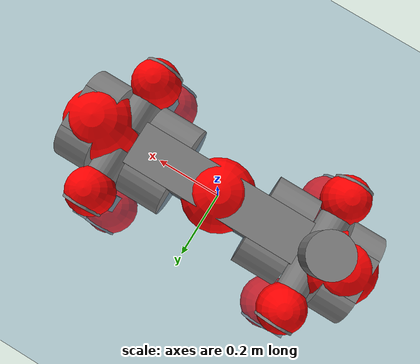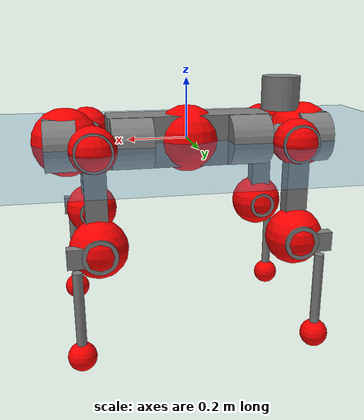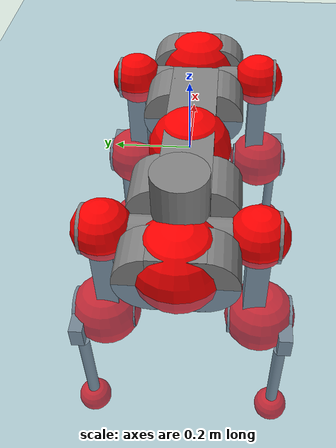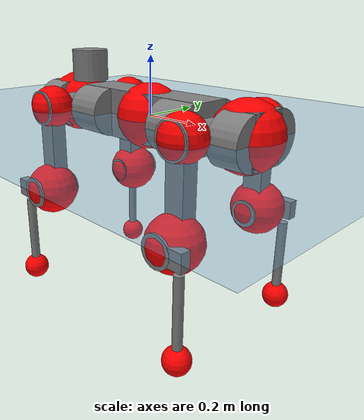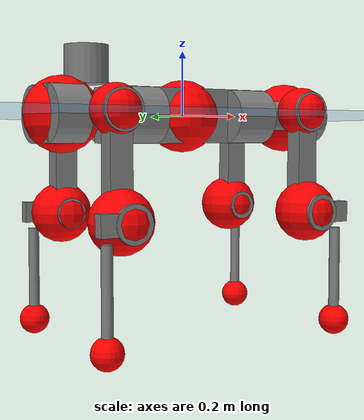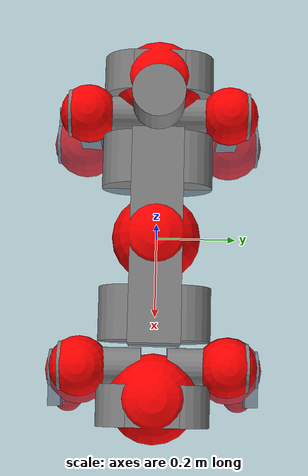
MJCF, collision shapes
<mujoco model="anymal_c">
  <compiler angle="radian" assetdir="assets" balanceinertia="true" inertiafromgeom="false"/>

  <option timestep="0.005" density="1.2" viscosity="2e-05"/>

  <size nkey="1"/>

  <visual>
    <quality shadowsize="8192"/>
    <map shadowclip="0.5"/>
  </visual>

  <default>
    <default class="/">
      <material specular="0" shininess="0.25"/>
      <geom contype="0" conaffinity="0" group="1" solref="-1000 -80"/>
      <site size="0.01 0.005 0.005" group="5"/>
      <general forcelimited="true" forcerange="-80 80" biastype="affine" gainprm="80" biasprm="0 -80 -2"/>
      <default class="anymal_c">
        <joint armature="0.01" damping="0.01" frictionloss="0.1"/>
        <default class="visual">
          <geom type="mesh" group="2"/>
          <default class="visual_zflip"/>
        </default>
        <default class="collision">
          <geom type="cylinder" group="3"/>
          <default class="foot">
            <geom size="0.03 0 0" type="sphere" condim="6" priority="1" friction="0.8 0.02 0.01" solimp="0.015 1 0.03"/>
          </default>
        </default>
      </default>
      <default class="reward_collision_sphere">
        <geom group="5" rgba="1 0 0 1"/>
      </default>
    </default>
  </default>

  <asset>
    <texture type="skybox" colorspace="auto" name="//unnamed_texture_0" builtin="gradient" rgb1="0.95 0.95 0.95" rgb2="0.95 0.95 0.95" width="100" height="600"/>
    <texture type="2d" colorspace="auto" name="texplane" builtin="checker" rgb1="0.345 0.575 0.748" rgb2="0.345 0.575 0.748" markrgb="1 1 1" width="512" height="512"/>
    <texture type="2d" colorspace="linear" name="base" file="base.png"/>
    <texture type="2d" colorspace="linear" name="top_shell" file="top_shell.png"/>
    <texture type="2d" colorspace="linear" name="bottom_shell" file="bottom_shell.png"/>
    <texture type="2d" colorspace="linear" name="remote" file="remote.png"/>
    <texture type="2d" colorspace="linear" name="hatch" file="hatch.png"/>
    <texture type="2d" colorspace="linear" name="handle" file="handle.png"/>
    <texture type="2d" colorspace="linear" name="face" file="face.png"/>
    <texture type="2d" colorspace="linear" name="battery" file="battery.png"/>
    <texture type="2d" colorspace="linear" name="lidar_cage" file="lidar_cage.png"/>
    <texture type="2d" colorspace="linear" name="depth_camera" file="depth_camera.png"/>
    <texture type="2d" colorspace="linear" name="wide_angle_camera" file="wide_angle_camera.png"/>
    <texture type="2d" colorspace="linear" name="lidar" file="lidar.png"/>
    <texture type="2d" colorspace="linear" name="drive" file="drive.png"/>
    <texture type="2d" colorspace="linear" name="hip_l" file="hip_l.png"/>
    <texture type="2d" colorspace="linear" name="shank_l" file="shank_l.png"/>
    <texture type="2d" colorspace="linear" name="foot" file="foot.png"/>
    <texture type="2d" colorspace="linear" name="thigh" file="thigh.png"/>
    <texture type="2d" colorspace="linear" name="shank_r" file="shank_r.png"/>
    <texture type="2d" colorspace="linear" name="hip_r" file="hip_r.png"/>
    <material name="MatPlane" class="/" texture="texplane" texuniform="true" texrepeat="2 2" specular="0.9" shininess="0.5"/>
    <material name="black_plastic" class="/" rgba="0.007 0.007 0.007 1"/>
    <material name="green" class="/" rgba="0.052 0.178 0.033 1"/>
    <material name="red" class="/" rgba="0.178 0.006 0.005 1"/>
    <material name="yellow" class="/" rgba="0.178 0.119 0.006 1"/>
    <material name="lwl" class="/" rgba="0.8 0.8 0.8 1"/>
    <material name="base" class="/" texture="base"/>
    <material name="top_shell" class="/" texture="top_shell"/>
    <material name="bottom_shell" class="/" texture="bottom_shell"/>
    <material name="hip_l" class="/" texture="hip_l"/>
    <material name="thigh" class="/" texture="thigh"/>
    <material name="shank_l" class="/" texture="shank_l"/>
    <material name="foot" class="/" texture="foot"/>
    <material name="hip_r" class="/" texture="hip_r"/>
    <material name="shank" class="/" texture="shank_r"/>
    <material name="hatch" class="/" texture="hatch"/>
    <material name="remote" class="/" texture="remote"/>
    <material name="handle" class="/" texture="handle"/>
    <material name="face" class="/" texture="face"/>
    <material name="depth_camera" class="/" texture="depth_camera"/>
    <material name="wide_angle_camera" class="/" texture="wide_angle_camera"/>
    <material name="battery" class="/" texture="battery"/>
    <material name="lidar_cage" class="/" texture="lidar_cage"/>
    <material name="lidar" class="/" texture="lidar"/>
    <material name="drive" class="/" texture="drive"/>
    <mesh name="base_0" class="/" file="base_0.obj"/>
    <mesh name="base_1" class="/" file="base_1.obj"/>
    <mesh name="base_2" class="/" file="base_2.obj"/>
    <mesh name="base_3" class="/" file="base_3.obj"/>
    <mesh name="base_4" class="/" file="base_4.obj"/>
    <mesh name="base_5" class="/" file="base_5.obj"/>
    <mesh name="top_shell" class="/" file="top_shell.obj"/>
    <mesh name="bottom_shell" class="/" file="bottom_shell.obj"/>
    <mesh name="remote" class="/" file="remote.obj"/>
    <mesh name="handle" class="/" file="handle.obj"/>
    <mesh name="face" class="/" file="face.obj"/>
    <mesh name="wide_angle_camera" class="/" file="wide_angle_camera.obj"/>
    <mesh name="depth_camera" class="/" file="depth_camera.obj"/>
    <mesh name="battery" class="/" file="battery.obj"/>
    <mesh name="lidar_cage" class="/" file="lidar_cage.obj"/>
    <mesh name="lidar" class="/" file="lidar.obj"/>
    <mesh name="drive" class="/" file="drive.obj"/>
    <mesh name="hip_l" class="/" file="hip_l.obj"/>
    <mesh name="thigh" class="/" file="thigh.obj"/>
    <mesh name="shank_l" class="/" file="shank_l.obj"/>
    <mesh name="foot" class="/" file="foot.obj"/>
    <mesh name="hip_r" class="/" file="hip_r.obj"/>
    <mesh name="hatch" class="/" file="hatch.obj"/>
    <mesh name="shank_r" class="/" file="shank_r.obj"/>
  </asset>

  <worldbody>
    <geom name="floor" class="/" size="100 100 0.125" type="plane" group="0" material="MatPlane"/>
    <light name="toplight_shadow" class="/" pos="0 0 5" dir="0.0990148 0.0990148 -0.990148" type="directional" ambient="0.04 0.04 0.04" diffuse="0.55 0.55 0.55" specular="0.12 0.12 0.12"/>
    <light name="toplight_fill" class="/" pos="0 0 5" dir="0.0990148 0.0990148 -0.990148" type="directional" castshadow="false" ambient="0.04 0.04 0.04" diffuse="0.3 0.3 0.3" specular="0.08 0.08 0.08"/>
    <body name="trunk" childclass="anymal_c" pos="-0.00238444 -0.000955306 -0.0011787" quat="0.999999 -0.000851681 0.000503603 -0.000153839">
      <inertial pos="0.000614341 0.00117045 0.0540525" quat="0.506613 0.506204 0.496137 0.490865" mass="15.5164" diaginertia="0.387413 0.232836 0.334998"/>
      <joint name="//unnamed_joint_0" type="free" armature="0" damping="0" frictionloss="0"/>
      <geom name="//unnamed_geom_1" class="visual" material="green" mesh="base_0"/>
      <geom name="//unnamed_geom_2" class="visual" material="yellow" mesh="base_1"/>
      <geom name="//unnamed_geom_3" class="visual" material="red" mesh="base_2"/>
      <geom name="//unnamed_geom_4" class="visual" material="black_plastic" mesh="base_3"/>
      <geom name="//unnamed_geom_5" class="visual" material="lwl" mesh="base_4"/>
      <geom name="//unnamed_geom_6" class="visual" material="base" mesh="base_5"/>
      <geom name="trunk_1" class="collision" size="0.27182 0.0656117 0.0843579" type="box"/>
      <geom name="trunk_2" class="collision" size="0.0843579 0.067955" pos="0.196066 0.0576064 0" quat="0.707107 0 0.707107 0"/>
      <geom name="trunk_3" class="collision" size="0.0843579 0.067955" pos="-0.196066 0.0576064 0" quat="0.707107 0 0.707107 0"/>
      <geom name="trunk_4" class="collision" size="0.0843579 0.067955" pos="0.196066 -0.0576064 0" quat="0.707107 0 0.707107 0"/>
      <geom name="trunk_5" class="collision" size="0.0843579 0.067955" pos="-0.196066 -0.0576064 0" quat="0.707107 0 0.707107 0"/>
      <geom name="//unnamed_geom_12" class="visual" material="top_shell" mesh="top_shell"/>
      <geom name="//unnamed_geom_13" class="visual" material="bottom_shell" mesh="bottom_shell"/>
      <geom name="//unnamed_geom_14" class="visual" material="remote" mesh="remote"/>
      <geom name="//unnamed_geom_15" class="visual" material="handle" mesh="handle"/>
      <geom name="//unnamed_geom_16" class="visual" pos="0.373651 0 0" quat="1 0 0 0" material="face" mesh="face"/>
      <geom name="trunk_6" class="collision" size="0.0515521 0.0656117 0.0843579" pos="0.423231 0 0" type="box"/>
      <geom name="//unnamed_geom_18" class="collision" size="0.0843579 0.0515521" pos="0.423231 0.0576064 0" quat="0.707107 0 0.707107 0"/>
      <geom name="//unnamed_geom_19" class="collision" size="0.0843579 0.0515521" pos="0.423231 -0.0576064 0" quat="0.707107 0 0.707107 0"/>
      <geom name="//unnamed_geom_20" class="visual" pos="0.416163 0 -0.0331701" quat="0.965926 0 0.258819 0" material="depth_camera" mesh="depth_camera"/>
      <geom name="//unnamed_geom_21" class="visual" pos="0.462444 0 0.0162803" material="wide_angle_camera" mesh="wide_angle_camera"/>
      <geom name="//unnamed_geom_22" class="visual_zflip" pos="-0.373651 0 0" quat="0 0 0 1" material="face" mesh="face"/>
      <geom name="trunk_7" class="collision" size="0.0515521 0.0656117 0.0843579" pos="-0.423231 0 0" quat="0 0 0 1" type="box"/>
      <geom name="//unnamed_geom_24" class="collision" size="0.0843579 0.0515521" pos="-0.423231 -0.0576064 0" quat="0 -0.707107 0 0.707107"/>
      <geom name="//unnamed_geom_25" class="collision" size="0.0843579 0.0515521" pos="-0.423231 0.0576064 0" quat="0 -0.707107 0 0.707107"/>
      <geom name="//unnamed_geom_26" class="visual" pos="-0.416163 0 -0.0331701" quat="0 -0.258819 0 0.965926" material="depth_camera" mesh="depth_camera"/>
      <geom name="//unnamed_geom_27" class="visual_zflip" pos="-0.462444 0 0.0162803" quat="0 0 0 1" material="wide_angle_camera" mesh="wide_angle_camera"/>
      <geom name="//unnamed_geom_28" class="visual" material="battery" mesh="battery"/>
      <geom name="//unnamed_geom_29" class="visual" pos="0 0.0619002 0.0301786" quat="0.683013 -0.183013 0.183013 0.683013" material="depth_camera" mesh="depth_camera"/>
      <geom name="//unnamed_geom_30" class="visual" pos="0 -0.0619002 0.0301786" quat="0.683013 0.183013 0.183013 -0.683013" material="depth_camera" mesh="depth_camera"/>
      <geom name="//unnamed_geom_31" class="visual" pos="-0.328128 0 0.0799336" quat="1 0 0 0" material="lidar_cage" mesh="lidar_cage"/>
      <geom name="trunk_8" class="collision" size="0.0656117 0.0562386" pos="-0.328128 0 0.145185"/>
      <geom name="//unnamed_geom_33" class="visual" pos="-0.328128 -3.08417e-05 0.154647" quat="0.707107 0 0 -0.707107" material="lidar" mesh="lidar"/>
      <geom name="//unnamed_geom_34" class="visual" pos="0.270345 0.0856806 -4.5641e-09" quat="0.258819 0.965926 0 0" material="drive" mesh="drive"/>
      <geom name="//unnamed_geom_35" class="visual" pos="0.270345 -0.0856806 4.5641e-09" quat="0.258819 -0.965926 0 0" material="drive" mesh="drive"/>
      <geom name="//unnamed_geom_36" class="visual" pos="-0.270345 0.0856806 4.5641e-09" quat="0 0 0.965926 -0.258819" material="drive" mesh="drive"/>
      <geom name="//unnamed_geom_37" class="visual" pos="-0.270345 -0.0856806 -4.5641e-09" quat="0 0 -0.965926 -0.258819" material="drive" mesh="drive"/>
      <geom name="//unnamed_geom_38" class="visual" pos="0.104568 0 0.0793898" quat="1 0 0 0" material="hatch" mesh="hatch"/>
      <geom name="//unnamed_geom_39" class="reward_collision_sphere" size="0.112477"/>
      <geom name="//unnamed_geom_40" class="reward_collision_sphere" size="0.112477" pos="0.405653 0 0"/>
      <geom name="//unnamed_geom_41" class="reward_collision_sphere" size="0.112477" pos="-0.405653 0 0"/>
      <site name="imu" pos="0.231914 -0.00490066 0.0504427" size="0.0093731"/>
      <camera name="track" pos="0 -1.6459 0" quat="0.707107 0.707107 0 0" mode="trackcom"/>
      <camera name="ego_camera" pos="0.405653 0 -0.0435013" quat="-0.5 -0.5 0.5 0.5"/>
      <body name="LF_HIP" pos="0.271308 0.0866821 -0.00208031" quat="0.25913 0.965841 0.000937598 -0.000976093">
        <inertial pos="0.0499267 -0.0124321 -0.00813101" quat="-0.131229 0.716962 -0.138408 0.670513" mass="2.36584" diaginertia="0.00359784 0.00191256 0.00525626"/>
        <joint name="LF_HAA" pos="0 0 0" axis="0.999934 0.0107622 0.00398156" stiffness="0.00100956" range="-0.66494 0.495699" armature="0.0106376" damping="0.00704476" frictionloss="0.0984958"/>
        <geom name="//unnamed_geom_42" class="visual" pos="0 -0.000268485 4.40985e-05" quat="0.258819 -0.965926 0 0" material="hip_l" mesh="hip_l"/>
        <geom name="//unnamed_geom_43" class="visual" pos="0.0539969 -0.0644891 -0.0391898" quat="0.183013 -0.683013 0.683013 0.183013" material="drive" mesh="drive"/>
        <geom name="//unnamed_geom_44" class="collision" size="0.0468655 0.0656117" pos="0.0539969 -0.00984229 -0.00750941" quat="-0.353553 -0.612372 0.612372 -0.353553"/>
        <body name="LF_THIGH" pos="0.0543531 -0.0599887 -0.0459568" quat="0.183088 -0.68295 0.683057 0.183009">
          <inertial pos="0.0274512 -0.00262873 -0.269491" quat="0.993039 -0.00334273 -0.0829996 0.0835078" mass="2.57184" diaginertia="0.0178298 0.0111148 0.0063026"/>
          <joint name="LF_HFE" pos="0 0 0" axis="0.999998 -0.00149094 -0.00154149" stiffness="0.00293718" range="-3.14125 3.18949" armature="0.00881989" damping="0" frictionloss="0.0933143"/>
          <geom name="//unnamed_geom_45" class="visual" pos="0.0015619 2.46119e-06 0" quat="0.707107 0 0 -0.707107" material="thigh" mesh="thigh"/>
          <geom name="//unnamed_geom_46" class="collision" size="0.0609252 0.0374924" pos="0.036058 0 0" quat="0.5 0.5 -0.5 -0.5"/>
          <geom name="//unnamed_geom_47" class="collision" size="0.0351491 0.0281193 0.132455" pos="0.0270435 0 -0.153683" quat="0.707107 0 0 -0.707107" type="box"/>
          <geom name="//unnamed_geom_48" class="visual" pos="0.0904155 0 -0.309947" quat="1 0 0 0" material="drive" mesh="drive"/>
          <geom name="//unnamed_geom_49" class="collision" size="0.0468655 0.0656117" pos="0.027314 0 -0.309947" quat="0.707107 0 0.707107 0"/>
          <geom name="//unnamed_geom_50" class="reward_collision_sphere" size="0.0749848" pos="0.0225363 0 0"/>
          <body name="LF_SHANK" pos="0.0925426 0.00205795 -0.307735" quat="1 -9.32874e-06 -1.43514e-05 5.4593e-06">
            <inertial pos="0.0054857 -0.0518544 -0.0855501" quat="0.992881 -0.116437 0.000172432 -0.0251112" mass="0.504347" diaginertia="0.00626301 0.00355251 0.00170885"/>
            <joint name="LF_KFE" pos="0 0 0" axis="0.999999 0.00108342 5.93197e-05" range="-3.09751 3.08452" armature="0.00917852" damping="0.0104637" frictionloss="0.097508"/>
            <geom name="//unnamed_geom_51" class="visual" pos="0.000509302 0.00271562 0" quat="0.707107 0 0 -0.707107" material="shank_l" mesh="shank_l"/>
            <geom name="LF_kfe_act" class="collision" size="0.0562386 0.0187462" pos="0.018029 0 0" quat="0.5 0.5 -0.5 -0.5"/>
            <geom name="//unnamed_geom_53" class="collision" size="0.0538944 0.0316342 0.0178089" pos="0.018029 -0.0473187 0" quat="0.5 0.5 -0.5 -0.5" type="box"/>
            <geom name="//unnamed_geom_54" class="visual" pos="0.0117638 -0.0715031 -0.367553" quat="0.382683 0 0 -0.92388" material="foot" mesh="foot"/>
            <geom name="LF_calf" class="collision" size="0.0164029 0.132397" pos="0.0117639 -0.0723783 -0.183777" quat="0.707107 0 0 -0.707107"/>
            <geom name="LF_foot" class="foot" size="0.0267841" pos="0.0117639 -0.0723783 -0.343084" quat="0.707107 0 0 -0.707107"/>
            <geom name="//unnamed_geom_57" class="reward_collision_sphere" size="0.093731" pos="-0.0450726 0 0"/>
            <geom name="//unnamed_geom_58" class="reward_collision_sphere" size="0.0468655" pos="0.0117639 -0.0723783 -0.343084"/>
            <site name="LF_foot" class="foot" pos="0.0117639 -0.0723783 -0.343084" quat="0.707107 0 0 -0.707107" size="0.0093731"/>
          </body>
        </body>
      </body>
      <body name="RF_HIP" pos="0.272228 -0.0849267 0.00289154" quat="0.258812 -0.965928 7.34606e-06 2.84681e-06">
        <inertial pos="0.0520012 0.0109407 -0.00860749" quat="0.135293 0.685643 0.116936 0.705631" mass="2.37548" diaginertia="0.00354493 0.00192953 0.00510268"/>
        <joint name="RF_HAA" pos="0 0 0" axis="0.999996 0.00257155 -0.00118023" range="-0.444233 0.725071" armature="0.00936071" damping="0.00813536" frictionloss="0.0926794"/>
        <geom name="//unnamed_geom_59" class="visual" pos="0 0.000268483 4.40984e-05" quat="0.258819 0.965926 0 0" material="hip_r" mesh="hip_r"/>
        <geom name="//unnamed_geom_60" class="visual" pos="0.0539969 0.0644891 -0.0391898" quat="0.183013 0.683013 0.683013 -0.183013" material="drive" mesh="drive"/>
        <geom name="//unnamed_geom_61" class="collision" size="0.0468655 0.0656117" pos="0.0539969 0.00984229 -0.00750941" quat="-0.353553 0.612372 0.612372 0.353553"/>
        <body name="RF_THIGH" pos="0.0553648 0.0618624 -0.0486841" quat="0.183147 0.68316 0.682859 -0.182902">
          <inertial pos="0.0279679 0.000100583 -0.269622" quat="0.993434 0.00300229 -0.0809766 0.0807638" mass="2.59843" diaginertia="0.0183024 0.0116682 0.00658042"/>
          <joint name="RF_HFE" pos="0 0 0" axis="1 -0.000920482 -0.000111609" stiffness="0.00576026" range="-3.19619 3.19199" armature="0.00822561" damping="0.00938168" frictionloss="0.0890452"/>
          <geom name="//unnamed_geom_62" class="visual" pos="0.0015619 2.46119e-06 0" quat="0.707107 0 0 -0.707107" material="thigh" mesh="thigh"/>
          <geom name="//unnamed_geom_63" class="collision" size="0.0609252 0.0374924" pos="0.036058 0 0" quat="0.5 0.5 0.5 0.5"/>
          <geom name="//unnamed_geom_64" class="collision" size="0.0351491 0.0281193 0.132455" pos="0.0270435 0 -0.153683" quat="0.707107 0 0 0.707107" type="box"/>
          <geom name="//unnamed_geom_65" class="visual" pos="0.0904155 0 -0.309947" quat="1 0 0 0" material="drive" mesh="drive"/>
          <geom name="//unnamed_geom_66" class="collision" size="0.0468655 0.0656117" pos="0.027314 0 -0.309947" quat="0.707107 0 0.707107 0"/>
          <geom name="//unnamed_geom_67" class="reward_collision_sphere" size="0.0749848" pos="0.0225363 0 0"/>
          <body name="RF_SHANK" pos="0.0914304 -0.000174447 -0.31086" quat="1 -3.91748e-05 4.26455e-05 -3.75506e-05">
            <inertial pos="0.00408422 0.0509299 -0.0853559" quat="0.992061 0.12299 -0.000781014 0.0262195" mass="0.455618" diaginertia="0.00591126 0.00349088 0.00159795"/>
            <joint name="RF_KFE" pos="0 0 0" axis="1 0.000584113 0.00080316" range="-3.14057 3.10884" armature="0.0106019" damping="0.00914354" frictionloss="0.0932722"/>
            <geom name="//unnamed_geom_68" class="visual" pos="0.000509299 -0.00271562 0" quat="0.707107 0 0 0.707107" material="shank" mesh="shank_r"/>
            <geom name="RF_kfe_act" class="collision" size="0.0562386 0.0187462" pos="0.018029 0 0" quat="0.5 0.5 0.5 0.5"/>
            <geom name="//unnamed_geom_70" class="collision" size="0.0538944 0.0316342 0.0178089" pos="0.018029 0.0473187 0" quat="0.5 0.5 0.5 0.5" type="box"/>
            <geom name="//unnamed_geom_71" class="visual" pos="0.0117641 0.0715031 -0.367553" quat="0.382683 0 0 0.92388" material="foot" mesh="foot"/>
            <geom name="RF_calf" class="collision" size="0.0164029 0.132397" pos="0.0117639 0.0723783 -0.183777" quat="0.707107 0 0 0.707107"/>
            <geom name="RF_foot" class="foot" size="0.0284448" pos="0.0117639 0.0723783 -0.343084" quat="0.707107 0 0 0.707107"/>
            <geom name="//unnamed_geom_74" class="reward_collision_sphere" size="0.093731" pos="-0.0450726 0 0"/>
            <geom name="//unnamed_geom_75" class="reward_collision_sphere" size="0.0468655" pos="0.0117639 0.0723783 -0.343084"/>
            <site name="RF_foot" class="foot" pos="0.0117639 0.0723783 -0.343084" quat="0.707107 0 0 0.707107" size="0.0093731"/>
          </body>
        </body>
      </body>
      <body name="LH_HIP" pos="-0.268978 0.0853887 -0.00169211" quat="5.51278e-05 0.000298355 0.965915 -0.25886">
        <inertial pos="0.0515116 0.0127635 -0.0118472" quat="0.131782 0.677876 0.126525 0.712116" mass="2.39175" diaginertia="0.00364356 0.0018241 0.00504029"/>
        <joint name="LH_HAA" pos="0 0 0" axis="0.999999 -0.00166308 0.000260312" range="-0.443195 0.777717" armature="0.00938967" damping="0" frictionloss="0.106678"/>
        <geom name="//unnamed_geom_76" class="visual" pos="0 0.000268483 4.40984e-05" quat="-0.258819 -0.965926 0 0" material="hip_r" mesh="hip_r"/>
        <geom name="//unnamed_geom_77" class="visual" pos="0.0539969 0.0644891 -0.0391898" quat="0.183013 0.683013 0.683013 -0.183013" material="drive" mesh="drive"/>
        <geom name="//unnamed_geom_78" class="collision" size="0.0468655 0.0656117" pos="0.0539969 0.00984229 -0.00750941" quat="-0.353553 0.612372 0.612372 0.353553"/>
        <body name="LH_THIGH" pos="0.0539265 0.0604812 -0.0480117" quat="0.183041 0.683087 0.682941 -0.182975">
          <inertial pos="0.0250858 -0.000994025 -0.2694" quat="0.991789 -0.00290483 -0.0773108 0.10183" mass="2.57647" diaginertia="0.0174964 0.0114195 0.00618037"/>
          <joint name="LH_HFE" pos="0 0 0" axis="0.99987 0.00647965 0.0147884" range="-3.19687 3.16115" armature="0.00939081" damping="0.0063849" frictionloss="0.0914787"/>
          <geom name="//unnamed_geom_79" class="visual" pos="0.0015619 2.46119e-06 0" quat="0.707107 0 0 -0.707107" material="thigh" mesh="thigh"/>
          <geom name="//unnamed_geom_80" class="collision" size="0.0609252 0.0374924" pos="0.036058 0 0" quat="0.5 0.5 -0.5 -0.5"/>
          <geom name="//unnamed_geom_81" class="collision" size="0.0351491 0.0281193 0.132455" pos="0.0270435 0 -0.153683" quat="0.707107 0 0 -0.707107" type="box"/>
          <geom name="//unnamed_geom_82" class="visual" pos="0.0904155 0 -0.309947" quat="1 0 0 0" material="drive" mesh="drive"/>
          <geom name="//unnamed_geom_83" class="collision" size="0.0468655 0.0656117" pos="0.027314 0 -0.309947" quat="0.707107 0 0.707107 0"/>
          <geom name="//unnamed_geom_84" class="reward_collision_sphere" size="0.0749848" pos="0.0225363 0 0"/>
          <body name="LH_SHANK" pos="0.0891106 -0.00048515 -0.312359" quat="1 -2.63396e-05 1.52187e-05 -2.94188e-05">
            <inertial pos="0.00652748 0.0484108 -0.0856161" quat="0.992273 0.121844 0.0100803 0.0211568" mass="0.467702" diaginertia="0.00605446 0.00348897 0.00170002"/>
            <joint name="LH_KFE" pos="0 0 0" axis="0.999956 -0.00160266 0.00927291" range="-3.15253 3.13883" armature="0.00909565" damping="0.00286641" frictionloss="0.101734"/>
            <geom name="//unnamed_geom_85" class="visual" pos="0.000509299 -0.00271562 0" quat="-0.707107 0 0 -0.707107" material="shank" mesh="shank_r"/>
            <geom name="LH_kfe_act" class="collision" size="0.0562386 0.0187462" pos="0.018029 0 0" quat="0.5 0.5 -0.5 -0.5"/>
            <geom name="//unnamed_geom_87" class="collision" size="0.0538944 0.0316342 0.0178089" pos="0.018029 0.0473187 0" quat="0.5 0.5 -0.5 -0.5" type="box"/>
            <geom name="//unnamed_geom_88" class="visual" pos="0.0117641 0.0715031 -0.367553" quat="-0.382683 0 0 -0.92388" material="foot" mesh="foot"/>
            <geom name="LH_calf" class="collision" size="0.0164029 0.132397" pos="0.0117639 0.0723783 -0.183777" quat="0.707107 0 0 -0.707107"/>
            <geom name="LH_foot" class="foot" size="0.0321477" pos="0.0117639 0.0723783 -0.343084" quat="0.707107 0 0 -0.707107"/>
            <geom name="//unnamed_geom_91" class="reward_collision_sphere" size="0.093731" pos="-0.0450726 0 0"/>
            <geom name="//unnamed_geom_92" class="reward_collision_sphere" size="0.0468655" pos="0.0117639 0.0723783 -0.343084"/>
            <site name="LH_foot" class="foot" pos="0.0117639 0.0723783 -0.343084" quat="0.707107 0 0 -0.707107" size="0.0093731"/>
          </body>
        </body>
      </body>
      <body name="RH_HIP" pos="-0.270334 -0.0853129 0.00156324" quat="-2.929e-05 9.86305e-05 -0.96596 -0.25869">
        <inertial pos="0.0516166 -0.00993051 -0.0116742" quat="-0.127998 0.709996 -0.135097 0.679169" mass="2.23563" diaginertia="0.00342165 0.00182221 0.00486167"/>
        <joint name="RH_HAA" pos="0 0 0" axis="0.999995 -0.00259448 -0.00182498" range="-0.724715 0.439414" armature="0.00868854" damping="0" frictionloss="0.0935766"/>
        <geom name="//unnamed_geom_93" class="visual" pos="0 -0.000268485 4.40985e-05" quat="-0.258819 0.965926 0 0" material="hip_l" mesh="hip_l"/>
        <geom name="//unnamed_geom_94" class="visual" pos="0.0539969 -0.0644891 -0.0391898" quat="-0.183013 0.683013 -0.683013 -0.183013" material="drive" mesh="drive"/>
        <geom name="//unnamed_geom_95" class="collision" size="0.0468655 0.0656117" pos="0.0539969 -0.00984229 -0.00750941" quat="0.353553 0.612372 -0.612372 0.353553"/>
        <body name="RH_THIGH" pos="0.0528081 -0.0588238 -0.0428075" quat="-0.182969 0.68283 -0.683151 -0.183221">
          <inertial pos="0.0262262 0.0023021 -0.266856" quat="0.993177 -0.00514847 -0.0807141 0.0840071" mass="2.36026" diaginertia="0.0175702 0.0109658 0.00635637"/>
          <joint name="RH_HFE" pos="0 0 0" axis="1 0.000678875 -0.000459317" stiffness="0.00922223" range="-3.19448 3.1981" armature="0.00973081" damping="0.00835294" frictionloss="0.0810216"/>
          <geom name="//unnamed_geom_96" class="visual" pos="0.0015619 2.46119e-06 0" quat="0.707107 0 0 -0.707107" material="thigh" mesh="thigh"/>
          <geom name="//unnamed_geom_97" class="collision" size="0.0609252 0.0374924" pos="0.036058 0 0" quat="0.5 0.5 0.5 0.5"/>
          <geom name="//unnamed_geom_98" class="collision" size="0.0351491 0.0281193 0.132455" pos="0.0270435 0 -0.153683" quat="0.707107 0 0 0.707107" type="box"/>
          <geom name="//unnamed_geom_99" class="visual" pos="0.0904155 0 -0.309947" quat="1 0 0 0" material="drive" mesh="drive"/>
          <geom name="//unnamed_geom_100" class="collision" size="0.0468655 0.0656117" pos="0.027314 0 -0.309947" quat="0.707107 0 0.707107 0"/>
          <geom name="//unnamed_geom_101" class="reward_collision_sphere" size="0.0749848" pos="0.0225363 0 0"/>
          <body name="RH_SHANK" pos="0.0924896 0.00138738 -0.307819" quat="1 -0.000729973 1.40205e-05 -3.58834e-05">
            <inertial pos="0.00495863 -0.0503973 -0.0873982" quat="0.993469 -0.111826 -0.000313345 -0.0226752" mass="0.456368" diaginertia="0.00596078 0.00340596 0.0016568"/>
            <joint name="RH_KFE" pos="0 0 0" axis="1 0.000287935 -0.00011774" range="-3.12713 3.16819" armature="0.00899662" damping="0" frictionloss="0.0914311"/>
            <geom name="//unnamed_geom_102" class="visual" pos="0.000509302 0.00271562 0" quat="0.707107 0 0 -0.707107" material="shank_l" mesh="shank_l"/>
            <geom name="RH_kfe_act" class="collision" size="0.0562386 0.0187462" pos="0.018029 0 0" quat="0.5 0.5 0.5 0.5"/>
            <geom name="//unnamed_geom_104" class="collision" size="0.0538944 0.0316342 0.0178089" pos="0.018029 -0.0473187 0" quat="0.5 0.5 0.5 0.5" type="box"/>
            <geom name="//unnamed_geom_105" class="visual" pos="0.0117638 -0.0715031 -0.367553" quat="0.382683 0 0 -0.92388" material="foot" mesh="foot"/>
            <geom name="RH_calf" class="collision" size="0.0164029 0.132397" pos="0.0117639 -0.0723783 -0.183777" quat="0.707107 0 0 0.707107"/>
            <geom name="RH_foot" class="foot" size="0.0280467" pos="0.0117639 -0.0723783 -0.343084" quat="0.707107 0 0 0.707107"/>
            <geom name="//unnamed_geom_108" class="reward_collision_sphere" size="0.093731" pos="-0.0450726 0 0"/>
            <geom name="//unnamed_geom_109" class="reward_collision_sphere" size="0.0468655" pos="0.0117639 -0.0723783 -0.343084"/>
            <site name="RH_foot" class="foot" pos="0.0117639 -0.0723783 -0.343084" quat="0.707107 0 0 0.707107" size="0.0093731"/>
          </body>
        </body>
      </body>
    </body>
  </worldbody>

  <contact>
    <pair class="/" geom1="floor" geom2="LF_foot" name="//unnamed_contact_0"/>
    <pair class="/" geom1="floor" geom2="RF_foot" name="//unnamed_contact_1"/>
    <pair class="/" geom1="floor" geom2="LH_foot" name="//unnamed_contact_2"/>
    <pair class="/" geom1="floor" geom2="RH_foot" name="//unnamed_contact_3"/>
  </contact>

  <actuator>
    <general name="LF_HAA" class="/" joint="LF_HAA" forcerange="-72.6955 72.6955" gainprm="72.2373" biasprm="0 -72.2373 -1.97908"/>
    <general name="LF_HFE" class="/" joint="LF_HFE" forcerange="-82.6338 82.6338" gainprm="72.2373" biasprm="0 -72.2373 -1.97908"/>
    <general name="LF_KFE" class="/" joint="LF_KFE" forcerange="-66.9697 66.9697" gainprm="72.2373" biasprm="0 -72.2373 -1.97908"/>
    <general name="RF_HAA" class="/" joint="RF_HAA" forcerange="-73.2272 73.2272" gainprm="72.2373" biasprm="0 -72.2373 -1.97908"/>
    <general name="RF_HFE" class="/" joint="RF_HFE" forcerange="-82.5518 82.5518" gainprm="72.2373" biasprm="0 -72.2373 -1.97908"/>
    <general name="RF_KFE" class="/" joint="RF_KFE" forcerange="-81.0484 81.0484" gainprm="72.2373" biasprm="0 -72.2373 -1.97908"/>
    <general name="LH_HAA" class="/" joint="LH_HAA" forcerange="-82.8065 82.8065" gainprm="72.2373" biasprm="0 -72.2373 -1.97908"/>
    <general name="LH_HFE" class="/" joint="LH_HFE" forcerange="-79.3719 79.3719" gainprm="72.2373" biasprm="0 -72.2373 -1.97908"/>
    <general name="LH_KFE" class="/" joint="LH_KFE" forcerange="-72.586 72.586" gainprm="72.2373" biasprm="0 -72.2373 -1.97908"/>
    <general name="RH_HAA" class="/" joint="RH_HAA" forcerange="-76.1887 76.1887" gainprm="72.2373" biasprm="0 -72.2373 -1.97908"/>
    <general name="RH_HFE" class="/" joint="RH_HFE" forcerange="-68.2479 68.2479" gainprm="72.2373" biasprm="0 -72.2373 -1.97908"/>
    <general name="RH_KFE" class="/" joint="RH_KFE" forcerange="-67.699 67.699" gainprm="72.2373" biasprm="0 -72.2373 -1.97908"/>
  </actuator>

  <sensor>
    <gyro site="imu" name="imu_angular_velocity"/>
    <velocimeter site="imu" name="imu_linear_velocity"/>
    <framelinvel objtype="site" objname="LF_foot" name="LF_foot_global_linear_velocity"/>
    <framelinvel objtype="site" objname="RF_foot" name="RF_foot_global_linear_velocity"/>
    <framelinvel objtype="site" objname="LH_foot" name="LH_foot_global_linear_velocity"/>
    <framelinvel objtype="site" objname="RH_foot" name="RH_foot_global_linear_velocity"/>
  </sensor>

  <keyframe>
    <key name="home" qpos="0 0 0.55 1 0 0 0 0 0.4 -0.8 0 -0.4 0.8 0 -0.4 0.8 0 0.4 -0.8"/>
  </keyframe>
</mujoco>
